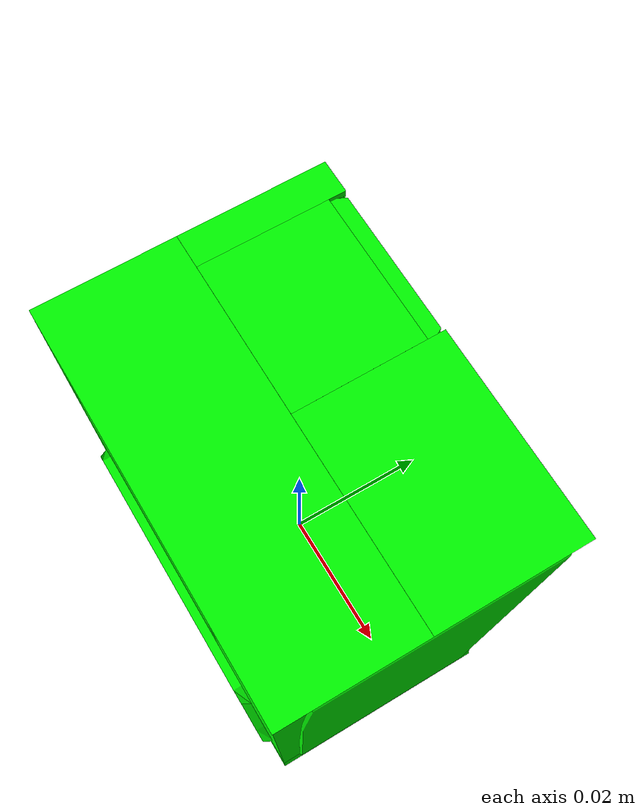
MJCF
<mujoco model="shapenetsem2">
  <asset>
    <mesh file="meshes/shapenetsem2/shapenetsem2_0.stl" name="shapenetsem2_0" scale="1 1 1"/>
    <mesh file="meshes/shapenetsem2/shapenetsem2_1.stl" name="shapenetsem2_1" scale="1 1 1"/>
    <mesh file="meshes/shapenetsem2/shapenetsem2_2.stl" name="shapenetsem2_2" scale="1 1 1"/>
    <mesh file="meshes/shapenetsem2/shapenetsem2_3.stl" name="shapenetsem2_3" scale="1 1 1"/>
    <mesh file="meshes/shapenetsem2/shapenetsem2_4.stl" name="shapenetsem2_4" scale="1 1 1"/>
    <mesh file="meshes/shapenetsem2/shapenetsem2_5.stl" name="shapenetsem2_5" scale="1 1 1"/>
    <mesh file="meshes/shapenetsem2/shapenetsem2_6.stl" name="shapenetsem2_6" scale="1 1 1"/>
    <mesh file="meshes/shapenetsem2/shapenetsem2_7.stl" name="shapenetsem2_7" scale="1 1 1"/>
    <mesh file="meshes/shapenetsem2/shapenetsem2_8.stl" name="shapenetsem2_8" scale="1 1 1"/>
    <mesh file="meshes/shapenetsem2/shapenetsem2_9.stl" name="shapenetsem2_9" scale="1 1 1"/>
    <mesh file="meshes/shapenetsem2/shapenetsem2_10.stl" name="shapenetsem2_10" scale="1 1 1"/>
    <mesh file="meshes/shapenetsem2/shapenetsem2_11.stl" name="shapenetsem2_11" scale="1 1 1"/>
    <mesh file="meshes/shapenetsem2/shapenetsem2_12.stl" name="shapenetsem2_12" scale="1 1 1"/>
    <mesh file="meshes/shapenetsem2/shapenetsem2_13.stl" name="shapenetsem2_13" scale="1 1 1"/>
    <mesh file="meshes/shapenetsem2/shapenetsem2_14.stl" name="shapenetsem2_14" scale="1 1 1"/>
    <mesh file="meshes/shapenetsem2/shapenetsem2_15.stl" name="shapenetsem2_15" scale="1 1 1"/>
    <mesh file="meshes/shapenetsem2/shapenetsem2_16.stl" name="shapenetsem2_16" scale="1 1 1"/>
    <mesh file="meshes/shapenetsem2/shapenetsem2_17.stl" name="shapenetsem2_17" scale="1 1 1"/>
    <mesh file="meshes/shapenetsem2/shapenetsem2_18.stl" name="shapenetsem2_18" scale="1 1 1"/>
    <mesh file="meshes/shapenetsem2/shapenetsem2_19.stl" name="shapenetsem2_19" scale="1 1 1"/>
  </asset>
  <worldbody>
    <body>
      <body name="collision">
        <geom pos="0 0 0" mesh="shapenetsem2_0" type="mesh" solimp="0.998 0.998 0.001" solref="0.001 1" density="100" friction="0.95 0.3 0.1" rgba="0 1 0 1" group="1" condim="4"/>
        <geom pos="0 0 0" mesh="shapenetsem2_1" type="mesh" solimp="0.998 0.998 0.001" solref="0.001 1" density="100" friction="0.95 0.3 0.1" rgba="0 1 0 1" group="1" condim="4"/>
        <geom pos="0 0 0" mesh="shapenetsem2_2" type="mesh" solimp="0.998 0.998 0.001" solref="0.001 1" density="100" friction="0.95 0.3 0.1" rgba="0 1 0 1" group="1" condim="4"/>
        <geom pos="0 0 0" mesh="shapenetsem2_3" type="mesh" solimp="0.998 0.998 0.001" solref="0.001 1" density="100" friction="0.95 0.3 0.1" rgba="0 1 0 1" group="1" condim="4"/>
        <geom pos="0 0 0" mesh="shapenetsem2_4" type="mesh" solimp="0.998 0.998 0.001" solref="0.001 1" density="100" friction="0.95 0.3 0.1" rgba="0 1 0 1" group="1" condim="4"/>
        <geom pos="0 0 0" mesh="shapenetsem2_5" type="mesh" solimp="0.998 0.998 0.001" solref="0.001 1" density="100" friction="0.95 0.3 0.1" rgba="0 1 0 1" group="1" condim="4"/>
        <geom pos="0 0 0" mesh="shapenetsem2_6" type="mesh" solimp="0.998 0.998 0.001" solref="0.001 1" density="100" friction="0.95 0.3 0.1" rgba="0 1 0 1" group="1" condim="4"/>
        <geom pos="0 0 0" mesh="shapenetsem2_7" type="mesh" solimp="0.998 0.998 0.001" solref="0.001 1" density="100" friction="0.95 0.3 0.1" rgba="0 1 0 1" group="1" condim="4"/>
        <geom pos="0 0 0" mesh="shapenetsem2_8" type="mesh" solimp="0.998 0.998 0.001" solref="0.001 1" density="100" friction="0.95 0.3 0.1" rgba="0 1 0 1" group="1" condim="4"/>
        <geom pos="0 0 0" mesh="shapenetsem2_9" type="mesh" solimp="0.998 0.998 0.001" solref="0.001 1" density="100" friction="0.95 0.3 0.1" rgba="0 1 0 1" group="1" condim="4"/>
        <geom pos="0 0 0" mesh="shapenetsem2_10" type="mesh" solimp="0.998 0.998 0.001" solref="0.001 1" density="100" friction="0.95 0.3 0.1" rgba="0 1 0 1" group="1" condim="4"/>
        <geom pos="0 0 0" mesh="shapenetsem2_11" type="mesh" solimp="0.998 0.998 0.001" solref="0.001 1" density="100" friction="0.95 0.3 0.1" rgba="0 1 0 1" group="1" condim="4"/>
        <geom pos="0 0 0" mesh="shapenetsem2_12" type="mesh" solimp="0.998 0.998 0.001" solref="0.001 1" density="100" friction="0.95 0.3 0.1" rgba="0 1 0 1" group="1" condim="4"/>
        <geom pos="0 0 0" mesh="shapenetsem2_13" type="mesh" solimp="0.998 0.998 0.001" solref="0.001 1" density="100" friction="0.95 0.3 0.1" rgba="0 1 0 1" group="1" condim="4"/>
        <geom pos="0 0 0" mesh="shapenetsem2_14" type="mesh" solimp="0.998 0.998 0.001" solref="0.001 1" density="100" friction="0.95 0.3 0.1" rgba="0 1 0 1" group="1" condim="4"/>
        <geom pos="0 0 0" mesh="shapenetsem2_15" type="mesh" solimp="0.998 0.998 0.001" solref="0.001 1" density="100" friction="0.95 0.3 0.1" rgba="0 1 0 1" group="1" condim="4"/>
        <geom pos="0 0 0" mesh="shapenetsem2_16" type="mesh" solimp="0.998 0.998 0.001" solref="0.001 1" density="100" friction="0.95 0.3 0.1" rgba="0 1 0 1" group="1" condim="4"/>
        <geom pos="0 0 0" mesh="shapenetsem2_17" type="mesh" solimp="0.998 0.998 0.001" solref="0.001 1" density="100" friction="0.95 0.3 0.1" rgba="0 1 0 1" group="1" condim="4"/>
        <geom pos="0 0 0" mesh="shapenetsem2_18" type="mesh" solimp="0.998 0.998 0.001" solref="0.001 1" density="100" friction="0.95 0.3 0.1" rgba="0 1 0 1" group="1" condim="4"/>
        <geom pos="0 0 0" mesh="shapenetsem2_19" type="mesh" solimp="0.998 0.998 0.001" solref="0.001 1" density="100" friction="0.95 0.3 0.1" rgba="0 1 0 1" group="1" condim="4"/>
      </body>
      <body name="visual">
        <geom pos="0 0 0" mesh="shapenetsem2_0" type="mesh" rgba="0 1 0 1" conaffinity="0" contype="0" group="0" mass="0.0001"/>
        <geom pos="0 0 0" mesh="shapenetsem2_1" type="mesh" rgba="0 1 0 1" conaffinity="0" contype="0" group="0" mass="0.0001"/>
        <geom pos="0 0 0" mesh="shapenetsem2_2" type="mesh" rgba="0 1 0 1" conaffinity="0" contype="0" group="0" mass="0.0001"/>
        <geom pos="0 0 0" mesh="shapenetsem2_3" type="mesh" rgba="0 1 0 1" conaffinity="0" contype="0" group="0" mass="0.0001"/>
        <geom pos="0 0 0" mesh="shapenetsem2_4" type="mesh" rgba="0 1 0 1" conaffinity="0" contype="0" group="0" mass="0.0001"/>
        <geom pos="0 0 0" mesh="shapenetsem2_5" type="mesh" rgba="0 1 0 1" conaffinity="0" contype="0" group="0" mass="0.0001"/>
        <geom pos="0 0 0" mesh="shapenetsem2_6" type="mesh" rgba="0 1 0 1" conaffinity="0" contype="0" group="0" mass="0.0001"/>
        <geom pos="0 0 0" mesh="shapenetsem2_7" type="mesh" rgba="0 1 0 1" conaffinity="0" contype="0" group="0" mass="0.0001"/>
        <geom pos="0 0 0" mesh="shapenetsem2_8" type="mesh" rgba="0 1 0 1" conaffinity="0" contype="0" group="0" mass="0.0001"/>
        <geom pos="0 0 0" mesh="shapenetsem2_9" type="mesh" rgba="0 1 0 1" conaffinity="0" contype="0" group="0" mass="0.0001"/>
        <geom pos="0 0 0" mesh="shapenetsem2_10" type="mesh" rgba="0 1 0 1" conaffinity="0" contype="0" group="0" mass="0.0001"/>
        <geom pos="0 0 0" mesh="shapenetsem2_11" type="mesh" rgba="0 1 0 1" conaffinity="0" contype="0" group="0" mass="0.0001"/>
        <geom pos="0 0 0" mesh="shapenetsem2_12" type="mesh" rgba="0 1 0 1" conaffinity="0" contype="0" group="0" mass="0.0001"/>
        <geom pos="0 0 0" mesh="shapenetsem2_13" type="mesh" rgba="0 1 0 1" conaffinity="0" contype="0" group="0" mass="0.0001"/>
        <geom pos="0 0 0" mesh="shapenetsem2_14" type="mesh" rgba="0 1 0 1" conaffinity="0" contype="0" group="0" mass="0.0001"/>
        <geom pos="0 0 0" mesh="shapenetsem2_15" type="mesh" rgba="0 1 0 1" conaffinity="0" contype="0" group="0" mass="0.0001"/>
        <geom pos="0 0 0" mesh="shapenetsem2_16" type="mesh" rgba="0 1 0 1" conaffinity="0" contype="0" group="0" mass="0.0001"/>
        <geom pos="0 0 0" mesh="shapenetsem2_17" type="mesh" rgba="0 1 0 1" conaffinity="0" contype="0" group="0" mass="0.0001"/>
        <geom pos="0 0 0" mesh="shapenetsem2_18" type="mesh" rgba="0 1 0 1" conaffinity="0" contype="0" group="0" mass="0.0001"/>
        <geom pos="0 0 0" mesh="shapenetsem2_19" type="mesh" rgba="0 1 0 1" conaffinity="0" contype="0" group="0" mass="0.0001"/>
      </body>
      <site rgba="0 0 0 0" size="0.005" pos="0 0 -0.06" name="bottom_site"/>
      <site rgba="0 0 0 0" size="0.005" pos="0 0 0.04" name="top_site"/>
      <site rgba="0 0 0 0" size="0.005" pos="0.025 0.025 0" name="horizontal_radius_site"/>
    </body>
  </worldbody>
</mujoco>
